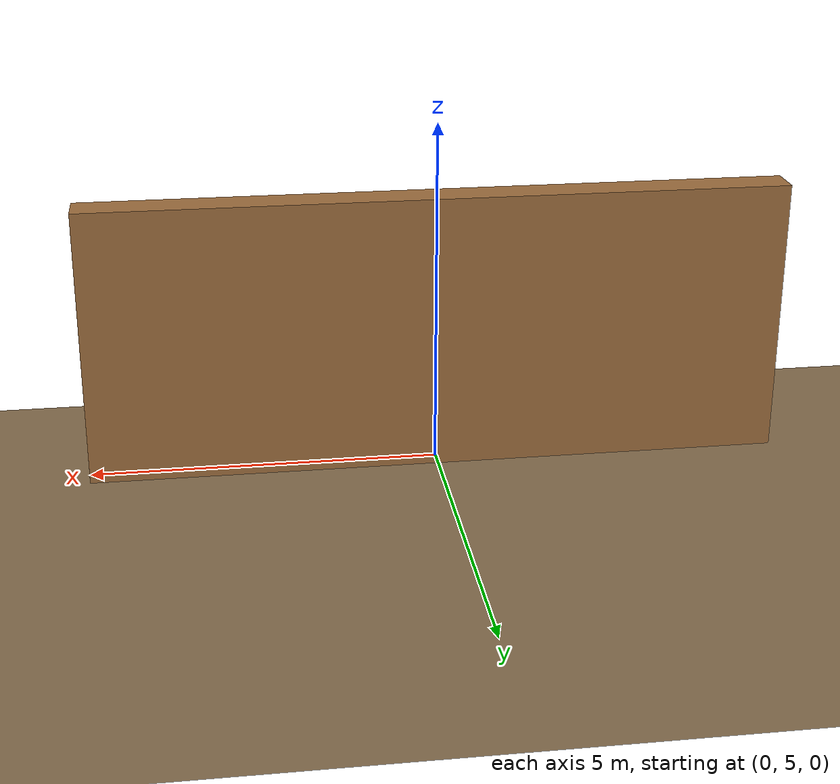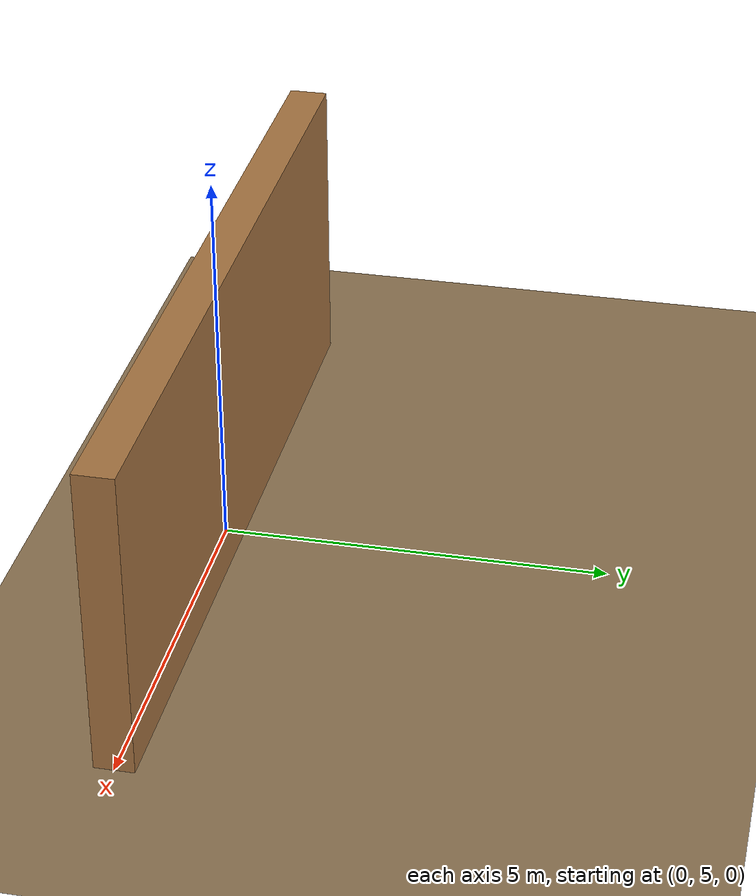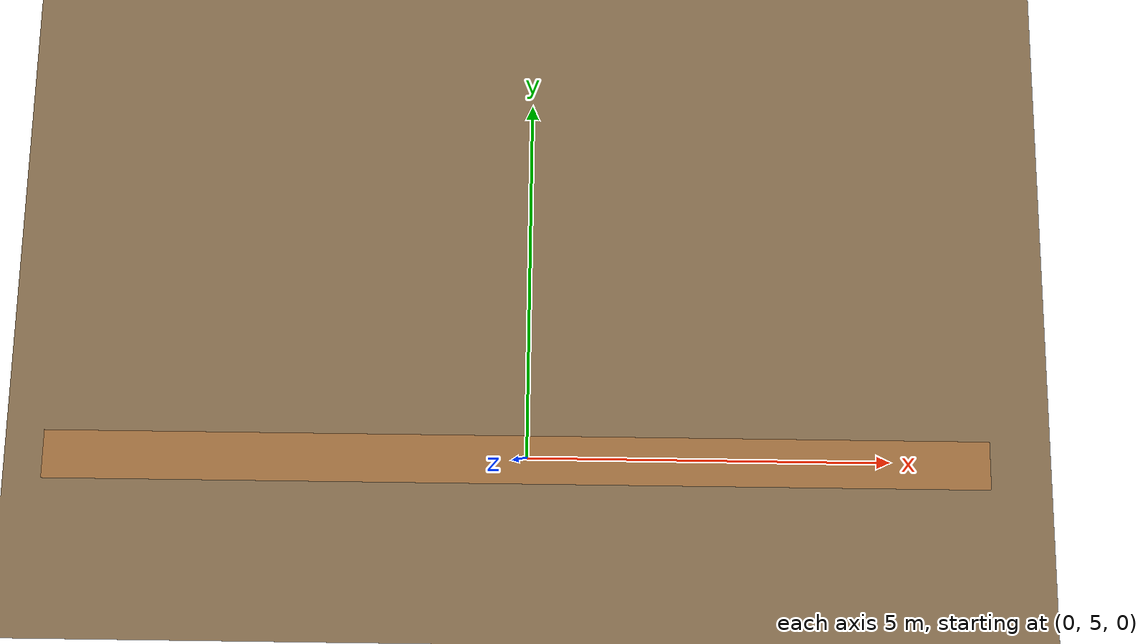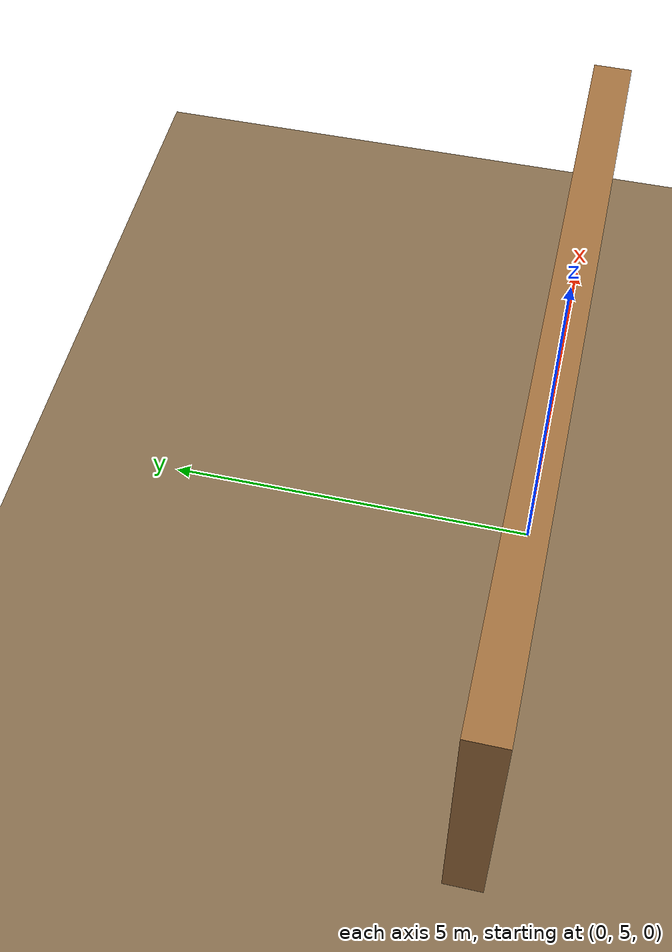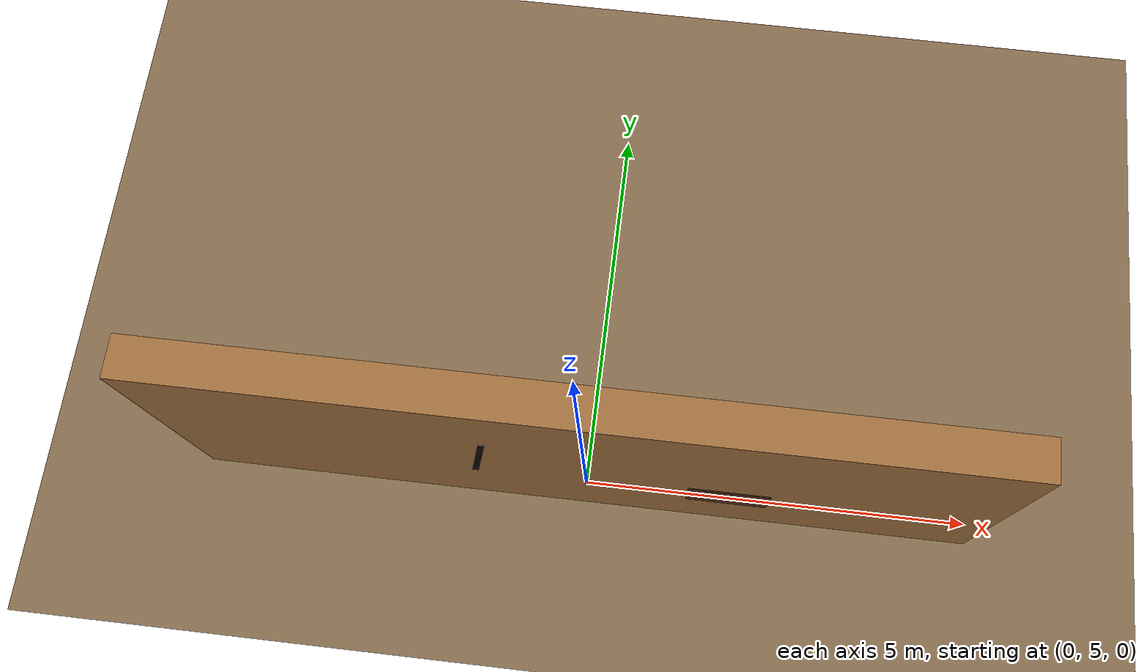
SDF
<?xml version="1.0" encoding="UTF-8"?>
<sdf version="1.9">
  <world name="earthen_heritage_wall">
    <physics type="ode">
      <max_step_size>0.004</max_step_size>
      <real_time_factor>1.0</real_time_factor>
      <real_time_update_rate>250</real_time_update_rate>
    </physics>
    <plugin name="gz::sim::systems::Physics" filename="gz-sim-physics-system"/>
    <plugin name="gz::sim::systems::UserCommands" filename="gz-sim-user-commands-system"/>
    <plugin name="gz::sim::systems::SceneBroadcaster" filename="gz-sim-scene-broadcaster-system"/>
    <plugin name="gz::sim::systems::Contact" filename="gz-sim-contact-system"/>
    <plugin name="gz::sim::systems::Imu" filename="gz-sim-imu-system"/>
    <plugin name="gz::sim::systems::AirPressure" filename="gz-sim-air-pressure-system"/>
    <plugin name="gz::sim::systems::ApplyLinkWrench" filename="gz-sim-apply-link-wrench-system"/>
    <plugin name="gz::sim::systems::NavSat" filename="gz-sim-navsat-system"/>
    <plugin name="gz::sim::systems::Sensors" filename="gz-sim-sensors-system">
      <render_engine>ogre2</render_engine>
    </plugin>

    <spherical_coordinates>
      <surface_model>EARTH_WGS84</surface_model>
      <world_frame_orientation>ENU</world_frame_orientation>
      <latitude_deg>31.6295</latitude_deg>
      <longitude_deg>-7.9811</longitude_deg>
      <elevation>466</elevation>
    </spherical_coordinates>

    <gravity>0 0 -9.8</gravity>
    <magnetic_field>6e-06 2.3e-05 -4.2e-05</magnetic_field>
    <scene>
      <ambient>0.45 0.40 0.32 1</ambient>
      <background>0.70 0.70 0.70 1</background>
      <shadows>true</shadows>
    </scene>

    <model name="ground_plane">
      <static>true</static>
      <link name="link">
        <collision name="collision">
          <geometry><plane><normal>0 0 1</normal><size>100 100</size></plane></geometry>
        </collision>
        <visual name="visual">
          <geometry><plane><normal>0 0 1</normal><size>100 100</size></plane></geometry>
          <material>
            <ambient>0.50 0.40 0.28 1</ambient>
            <diffuse>0.55 0.45 0.32 1</diffuse>
          </material>
        </visual>
      </link>
    </model>

    <light name="sun" type="directional">
      <pose>0 0 500 0 0 0</pose>
      <cast_shadows>true</cast_shadows>
      <intensity>1</intensity>
      <direction>0.1 0.6 -0.8</direction>
    </light>

    <!-- Inspection facade. The PX4 camera-equipped model is spawned by PX4. -->
    <model name="earthen_heritage_wall">
      <static>true</static>
      <pose>0 5 2 0 0 0</pose>
      <link name="wall_link">
        <collision name="collision">
          <geometry><box><size>10 0.5 4</size></box></geometry>
        </collision>
        <visual name="visual">
          <geometry><box><size>10 0.5 4</size></box></geometry>
          <material>
            <ambient>0.58 0.38 0.20 1</ambient>
            <diffuse>0.66 0.46 0.26 1</diffuse>
          </material>
        </visual>
      </link>
    </model>

    <!-- Thin visual markings provide deterministic simulated defect locations. -->
    <model name="structural_crack_marker">
      <static>true</static>
      <pose>-1.2 4.744 2.1 0 0.15 0</pose>
      <link name="marker_link">
        <visual name="crack">
          <geometry><box><size>0.08 0.012 1.45</size></box></geometry>
          <material><ambient>0.06 0.03 0.015 1</ambient><diffuse>0.08 0.04 0.02 1</diffuse></material>
        </visual>
      </link>
    </model>
    <model name="surface_erosion_marker">
      <static>true</static>
      <pose>1.8 4.744 1.35 0 0 0</pose>
      <link name="marker_link">
        <visual name="erosion">
          <geometry><box><size>1.0 0.012 0.65</size></box></geometry>
          <material><ambient>0.28 0.16 0.08 1</ambient><diffuse>0.34 0.20 0.10 1</diffuse></material>
        </visual>
      </link>
    </model>
  </world>
</sdf>
